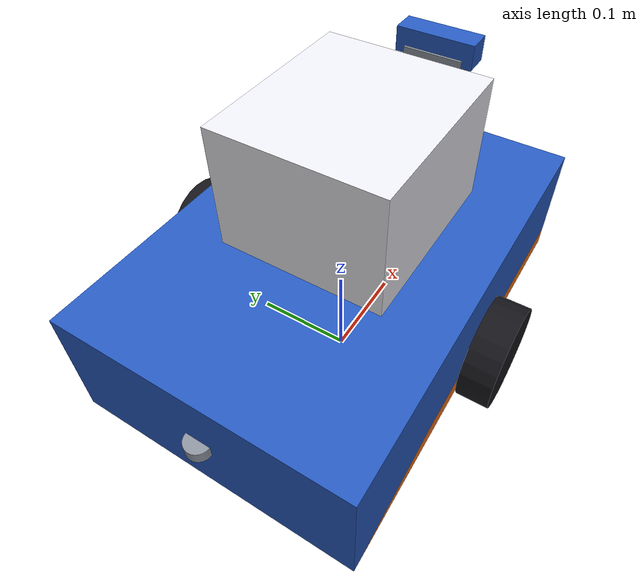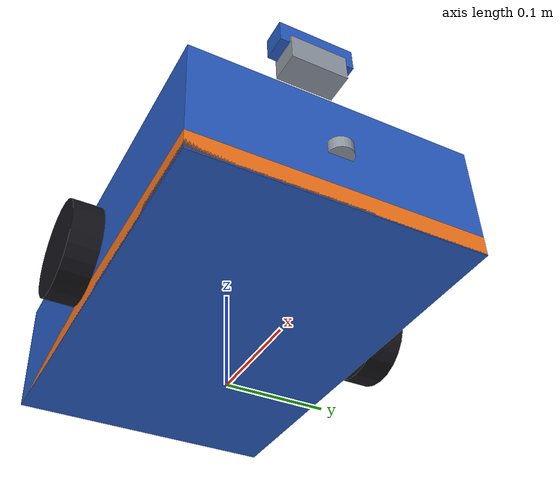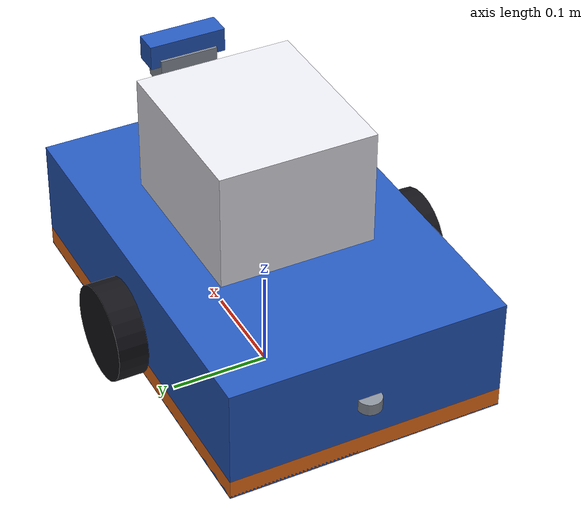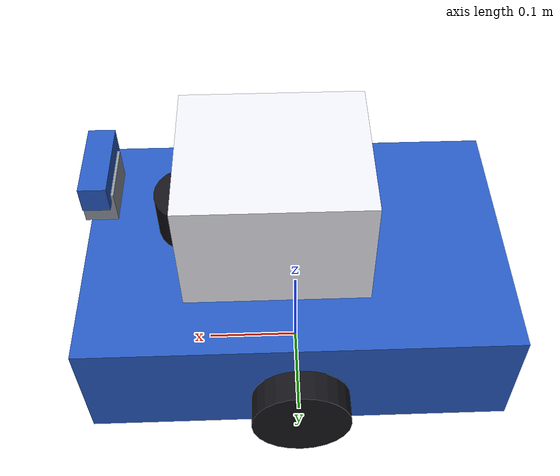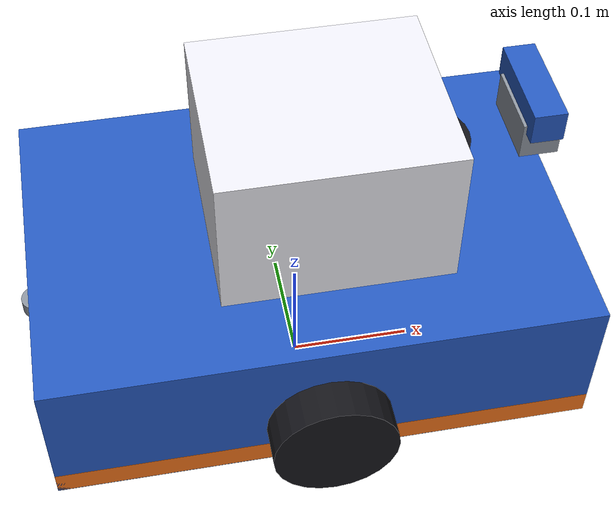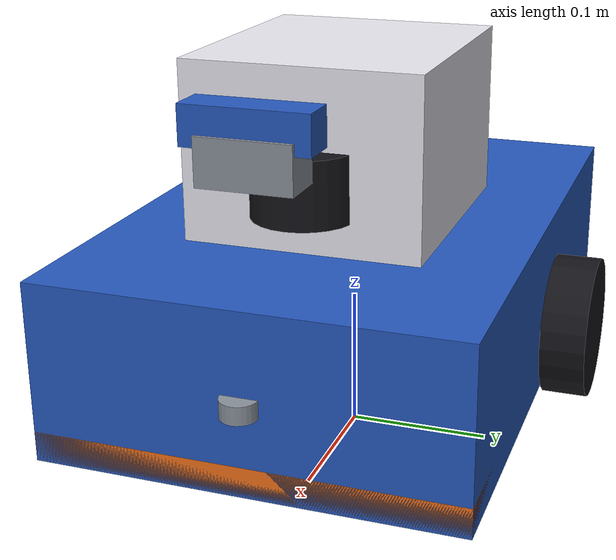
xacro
<?xml version="1.0"?>
<robot xmlns:xacro="http://www.ros.org/wiki/xacro" name="medibot">

  <!-- controller yaml path injected by launch -->
  <xacro:arg name="controller_yaml" default="/opt/ros/humble/share/diff_drive_controller/config/diff_drive_controller.yaml"/>

  <!-- ===================== Properties ===================== -->
  <xacro:property name="M_PI" value="3.141592653589793"/>
  <xacro:property name="wheel_radius" value="0.048"/>
  <xacro:property name="wheel_width" value="0.030"/>
  <xacro:property name="wheel_separation" value="0.32"/>
  <xacro:property name="chassis_length" value="0.42"/>
  <xacro:property name="chassis_width" value="0.28"/>
  <xacro:property name="chassis_height" value="0.12"/>
  <xacro:property name="chassis_mass" value="4.5"/>
  <xacro:property name="wheel_mass" value="0.35"/>
  <xacro:property name="lidar_mass" value="0.25"/>
  <xacro:property name="payload_mass" value="0.5"/>
  <xacro:property name="ground_clearance" value="0.05"/>

  <!-- ===================== Materials ===================== -->
  <material name="medinav_grey">
    <color rgba="0.55 0.58 0.62 1.0"/>
  </material>
  <material name="medinav_blue">
    <color rgba="0.15 0.35 0.75 1.0"/>
  </material>
  <material name="medinav_white">
    <color rgba="0.92 0.92 0.95 1.0"/>
  </material>
  <material name="medinav_orange">
    <color rgba="0.95 0.45 0.10 1.0"/>
  </material>
  <material name="medinav_black">
    <color rgba="0.08 0.08 0.10 1.0"/>
  </material>

  <!-- ===================== Macros ===================== -->
  <xacro:macro name="box_inertia" params="mass x y z">
    <inertial>
      <mass value="${mass}"/>
      <inertia ixx="${mass/12.0*(y*y+z*z)}" ixy="0.0" ixz="0.0"
               iyy="${mass/12.0*(x*x+z*z)}" iyz="0.0"
               izz="${mass/12.0*(x*x+y*y)}"/>
    </inertial>
  </xacro:macro>

  <xacro:macro name="cylinder_inertia" params="mass r h">
    <inertial>
      <mass value="${mass}"/>
      <inertia ixx="${mass/12.0*(3*r*r+h*h)}" ixy="0.0" ixz="0.0"
               iyy="${mass/12.0*(3*r*r+h*h)}" iyz="0.0"
               izz="${mass/2.0*r*r}"/>
    </inertial>
  </xacro:macro>

  <xacro:macro name="wheel" params="prefix reflect">
    <link name="${prefix}_wheel_link">
      <visual>
        <origin xyz="0 0 0" rpy="${M_PI/2} 0 0"/>
        <geometry>
          <cylinder radius="${wheel_radius}" length="${wheel_width}"/>
        </geometry>
        <material name="medinav_black"/>
      </visual>
      <collision>
        <origin xyz="0 0 0" rpy="${M_PI/2} 0 0"/>
        <geometry>
          <cylinder radius="${wheel_radius}" length="${wheel_width}"/>
        </geometry>
      </collision>
      <xacro:cylinder_inertia mass="${wheel_mass}" r="${wheel_radius}" h="${wheel_width}"/>
    </link>
    <joint name="${prefix}_wheel_joint" type="continuous">
      <parent link="base_link"/>
      <child link="${prefix}_wheel_link"/>
      <origin xyz="0 ${reflect * wheel_separation/2} ${wheel_radius}" rpy="0 0 0"/>
      <axis xyz="0 1 0"/>
    </joint>
    <gazebo reference="${prefix}_wheel_link">
      <mu1>1.2</mu1>
      <mu2>1.2</mu2>
      <kp>1000000.0</kp>
      <kd>100.0</kd>
      <minDepth>0.001</minDepth>
      <maxVel>1.0</maxVel>
      <material>Gazebo/Black</material>
    </gazebo>
    <ros2_control name="${prefix}_wheel_joint" type="system">
      <!-- placeholder removed; full ros2_control block is at robot level -->
    </ros2_control>
  </xacro:macro>

  <!-- ===================== Chassis ===================== -->
  <link name="base_footprint"/>

  <joint name="base_footprint_joint" type="fixed">
    <parent link="base_footprint"/>
    <child link="base_link"/>
    <origin xyz="0 0 ${ground_clearance + chassis_height/2}" rpy="0 0 0"/>
  </joint>

  <link name="base_link">
    <visual>
      <origin xyz="0 0 0" rpy="0 0 0"/>
      <geometry>
        <box size="${chassis_length} ${chassis_width} ${chassis_height}"/>
      </geometry>
      <material name="medinav_blue"/>
    </visual>
    <collision>
      <origin xyz="0 0 0" rpy="0 0 0"/>
      <geometry>
        <box size="${chassis_length} ${chassis_width} ${chassis_height}"/>
      </geometry>
    </collision>
    <xacro:box_inertia mass="${chassis_mass}" x="${chassis_length}" y="${chassis_width}" z="${chassis_height}"/>
  </link>

  <gazebo reference="base_link">
    <material>Gazebo/Blue</material>
    <selfCollide>false</selfCollide>
  </gazebo>

  <!-- ===================== Wheels ===================== -->
  <!-- Inline wheels (macros above keep file readable; joints here for clarity) -->
  <link name="left_wheel_link">
    <visual>
      <origin xyz="0 0 0" rpy="${M_PI/2} 0 0"/>
      <geometry>
        <cylinder radius="${wheel_radius}" length="${wheel_width}"/>
      </geometry>
      <material name="medinav_black"/>
    </visual>
    <collision>
      <origin xyz="0 0 0" rpy="${M_PI/2} 0 0"/>
      <geometry>
        <cylinder radius="${wheel_radius}" length="${wheel_width}"/>
      </geometry>
    </collision>
    <xacro:cylinder_inertia mass="${wheel_mass}" r="${wheel_radius}" h="${wheel_width}"/>
  </link>
  <joint name="left_wheel_joint" type="continuous">
    <parent link="base_link"/>
    <child link="left_wheel_link"/>
    <origin xyz="0 ${wheel_separation/2} ${wheel_radius - chassis_height/2}" rpy="0 0 0"/>
    <axis xyz="0 1 0"/>
  </joint>
  <gazebo reference="left_wheel_link">
    <mu1>1.2</mu1><mu2>1.2</mu2>
    <kp>1000000.0</kp><kd>100.0</kd>
    <material>Gazebo/Black</material>
  </gazebo>

  <link name="right_wheel_link">
    <visual>
      <origin xyz="0 0 0" rpy="${M_PI/2} 0 0"/>
      <geometry>
        <cylinder radius="${wheel_radius}" length="${wheel_width}"/>
      </geometry>
      <material name="medinav_black"/>
    </visual>
    <collision>
      <origin xyz="0 0 0" rpy="${M_PI/2} 0 0"/>
      <geometry>
        <cylinder radius="${wheel_radius}" length="${wheel_width}"/>
      </geometry>
    </collision>
    <xacro:cylinder_inertia mass="${wheel_mass}" r="${wheel_radius}" h="${wheel_width}"/>
  </link>
  <joint name="right_wheel_joint" type="continuous">
    <parent link="base_link"/>
    <child link="right_wheel_link"/>
    <origin xyz="0 ${-wheel_separation/2} ${wheel_radius - chassis_height/2}" rpy="0 0 0"/>
    <axis xyz="0 1 0"/>
  </joint>
  <gazebo reference="right_wheel_link">
    <mu1>1.2</mu1><mu2>1.2</mu2>
    <kp>1000000.0</kp><kd>100.0</kd>
    <material>Gazebo/Black</material>
  </gazebo>

  <!-- Caster -->
  <link name="caster_link">
    <visual>
      <origin xyz="0 0 0" rpy="0 0 0"/>
      <geometry>
        <sphere radius="0.03"/>
      </geometry>
      <material name="medinav_grey"/>
    </visual>
    <collision>
      <origin xyz="0 0 0" rpy="0 0 0"/>
      <geometry>
        <sphere radius="0.03"/>
      </geometry>
    </collision>
    <xacro:cylinder_inertia mass="0.12" r="0.03" h="0.03"/>
  </link>
  <joint name="caster_joint" type="fixed">
    <parent link="base_link"/>
    <child link="caster_link"/>
    <origin xyz="${-chassis_length/2 + 0.04} 0 ${0.03 - chassis_height/2}" rpy="0 0 0"/>
  </joint>
  <gazebo reference="caster_link">
    <mu1>0.05</mu1><mu2>0.05</mu2>
    <material>Gazebo/Grey</material>
  </gazebo>

  <!-- ===================== Payload box ===================== -->
  <link name="payload_link">
    <visual>
      <origin xyz="0 0 0" rpy="0 0 0"/>
      <geometry>
        <box size="0.18 0.16 0.12"/>
      </geometry>
      <material name="medinav_white"/>
    </visual>
    <collision>
      <origin xyz="0 0 0" rpy="0 0 0"/>
      <geometry>
        <box size="0.18 0.16 0.12"/>
      </geometry>
    </collision>
    <xacro:box_inertia mass="${payload_mass}" x="0.18" y="0.16" z="0.12"/>
  </link>
  <joint name="payload_joint" type="fixed">
    <parent link="base_link"/>
    <child link="payload_link"/>
    <origin xyz="0.02 0 ${chassis_height/2 + 0.06}" rpy="0 0 0"/>
  </joint>

  <!-- ===================== 2D LiDAR ===================== -->
  <link name="lidar_link">
    <visual>
      <origin xyz="0 0 0" rpy="0 0 0"/>
      <geometry>
        <cylinder radius="0.035" length="0.045"/>
      </geometry>
      <material name="medinav_black"/>
    </visual>
    <collision>
      <origin xyz="0 0 0" rpy="0 0 0"/>
      <geometry>
        <cylinder radius="0.035" length="0.045"/>
      </geometry>
    </collision>
    <xacro:cylinder_inertia mass="${lidar_mass}" r="0.035" h="0.045"/>
  </link>
  <joint name="lidar_joint" type="fixed">
    <parent link="base_link"/>
    <child link="lidar_link"/>
    <origin xyz="0.10 0 ${chassis_height/2 + 0.045}" rpy="0 0 0"/>
  </joint>

  <!-- Gazebo GPU/CPU lidar sensor -->
  <gazebo reference="lidar_link">
    <material>Gazebo/Black</material>
    <sensor name="lidar" type="ray">
      <always_on>true</always_on>
      <update_rate>15</update_rate>
      <visualize>true</visualize>
      <pose>0 0 0 0 0 0</pose>
      <ray>
        <scan>
          <horizontal>
            <samples>360</samples>
            <resolution>1</resolution>
            <min_angle>-3.14159</min_angle>
            <max_angle>3.14159</max_angle>
          </horizontal>
        </scan>
        <range>
          <min>0.12</min>
          <max>12.0</max>
          <resolution>0.01</resolution>
        </range>
        <noise>
          <type>gaussian</type>
          <mean>0.0</mean>
          <stddev>0.012</stddev>
        </noise>
      </ray>
      <plugin name="lidar_plugin" filename="libgazebo_ros_ray_sensor.so">
        <ros>
          <remapping>~/out:=scan</remapping>
        </ros>
        <output_type>sensor_msgs/LaserScan</output_type>
        <frame_name>lidar_link</frame_name>
      </plugin>
    </sensor>
  </gazebo>

  <!-- ===================== IMU ===================== -->
  <link name="imu_link">
    <visual>
      <origin xyz="0 0 0" rpy="0 0 0"/>
      <geometry>
        <box size="0.02 0.02 0.01"/>
      </geometry>
      <material name="medinav_orange"/>
    </visual>
    <xacro:box_inertia mass="0.02" x="0.02" y="0.02" z="0.01"/>
  </link>
  <joint name="imu_joint" type="fixed">
    <parent link="base_link"/>
    <child link="imu_link"/>
    <origin xyz="0 0 ${chassis_height/2 + 0.01}" rpy="0 0 0"/>
  </joint>
  <gazebo reference="imu_link">
    <gravity>true</gravity>
    <sensor name="imu_sensor" type="imu">
      <always_on>true</always_on>
      <update_rate>100</update_rate>
      <imu>
        <angular_velocity>
          <x><noise type="gaussian"><mean>0</mean><stddev>0.0002</stddev></noise></x>
          <y><noise type="gaussian"><mean>0</mean><stddev>0.0002</stddev></noise></y>
          <z><noise type="gaussian"><mean>0</mean><stddev>0.0002</stddev></noise></z>
        </angular_velocity>
        <linear_acceleration>
          <x><noise type="gaussian"><mean>0</mean><stddev>0.017</stddev></noise></x>
          <y><noise type="gaussian"><mean>0</mean><stddev>0.017</stddev></noise></y>
          <z><noise type="gaussian"><mean>0</mean><stddev>0.017</stddev></noise></z>
        </linear_acceleration>
      </imu>
      <plugin name="imu_plugin" filename="libgazebo_ros_imu_sensor.so">
        <ros>
          <remapping>~/out:=imu</remapping>
        </ros>
        <frame_name>imu_link</frame_name>
        <initial_orientation_as_reference>false</initial_orientation_as_reference>
      </plugin>
    </sensor>
  </gazebo>

  <!-- ===================== RGB Camera ===================== -->
  <link name="camera_link">
    <visual>
      <origin xyz="0 0 0" rpy="0 0 0"/>
      <geometry>
        <box size="0.03 0.06 0.03"/>
      </geometry>
      <material name="medinav_grey"/>
    </visual>
    <collision>
      <geometry>
        <box size="0.03 0.06 0.03"/>
      </geometry>
    </collision>
    <xacro:box_inertia mass="0.05" x="0.03" y="0.06" z="0.03"/>
  </link>
  <joint name="camera_joint" type="fixed">
    <parent link="base_link"/>
    <child link="camera_link"/>
    <origin xyz="0.18 0 ${chassis_height/2 + 0.08}" rpy="0 0 0"/>
  </joint>
  <gazebo reference="camera_link">
    <sensor name="camera" type="camera">
      <always_on>true</always_on>
      <update_rate>15</update_rate>
      <camera>
        <horizontal_fov>1.3962634</horizontal_fov>
        <image>
          <width>640</width>
          <height>480</height>
          <format>R8G8B8</format>
        </image>
        <clip>
          <near>0.05</near>
          <far>10.0</far>
        </clip>
        <noise>
          <type>gaussian</type>
          <mean>0.0</mean>
          <stddev>0.007</stddev>
        </noise>
      </camera>
      <plugin name="camera_controller" filename="libgazebo_ros_camera.so">
        <ros>
          <remapping>~/image_raw:=camera/image_raw</remapping>
          <remapping>~/camera_info:=camera/camera_info</remapping>
        </ros>
        <frame_name>camera_link</frame_name>
        <hack_baseline>0.07</hack_baseline>
      </plugin>
    </sensor>
  </gazebo>

  <!-- ===================== Bumpers / safety ===================== -->
  <link name="bumper_link">
    <visual>
      <geometry>
        <box size="${chassis_length} ${chassis_width} 0.02"/>
      </geometry>
      <material name="medinav_orange"/>
    </visual>
    <xacro:box_inertia mass="0.05" x="${chassis_length}" y="${chassis_width}" z="0.02"/>
  </link>
  <joint name="bumper_joint" type="fixed">
    <parent link="base_link"/>
    <child link="bumper_link"/>
    <origin xyz="0 0 ${-chassis_height/2 + 0.01}" rpy="0 0 0"/>
  </joint>

  <!-- ===================== Ultrasonic ring ===================== -->
  <xacro:macro name="ultrasonic" params="name x y yaw">
    <link name="ultrasonic_${name}_link">
      <visual>
        <geometry>
          <cylinder radius="0.012" length="0.012"/>
        </geometry>
        <material name="medinav_grey"/>
      </visual>
      <xacro:cylinder_inertia mass="0.01" r="0.012" h="0.012"/>
    </link>
    <joint name="ultrasonic_${name}_joint" type="fixed">
      <parent link="base_link"/>
      <child link="ultrasonic_${name}_link"/>
      <origin xyz="${x} ${y} 0" rpy="0 0 ${yaw}"/>
    </joint>
    <gazebo reference="ultrasonic_${name}_link">
      <sensor name="us_${name}" type="ray">
        <always_on>true</always_on>
        <update_rate>20</update_rate>
        <visualize>false</visualize>
        <ray>
          <scan>
            <horizontal>
              <samples>5</samples>
              <resolution>1</resolution>
              <min_angle>-0.26</min_angle>
              <max_angle>0.26</max_angle>
            </horizontal>
          </scan>
          <range>
            <min>0.02</min>
            <max>4.0</max>
            <resolution>0.01</resolution>
          </range>
          <noise>
            <type>gaussian</type>
            <mean>0.0</mean>
            <stddev>0.01</stddev>
          </noise>
        </ray>
        <plugin name="us_${name}_plugin" filename="libgazebo_ros_ray_sensor.so">
          <ros>
            <remapping>~/out:=ultrasonic/${name}</remapping>
          </ros>
          <output_type>sensor_msgs/Range</output_type>
          <frame_name>ultrasonic_${name}_link</frame_name>
          <radiation_type>ultrasound</radiation_type>
          <fov>0.52</fov>
        </plugin>
      </sensor>
    </gazebo>
  </xacro:macro>

  <xacro:ultrasonic name="front" x="${chassis_length/2}" y="0" yaw="0"/>
  <xacro:ultrasonic name="rear" x="${-chassis_length/2}" y="0" yaw="${M_PI}"/>
  <xacro:ultrasonic name="fl" x="${chassis_length/2 - 0.04}" y="${chassis_width/2 - 0.03}" yaw="0.6"/>
  <xacro:ultrasonic name="fr" x="${chassis_length/2 - 0.04}" y="${-chassis_width/2 + 0.03}" yaw="-0.6"/>
  <xacro:ultrasonic name="rl" x="${-chassis_length/2 + 0.04}" y="${chassis_width/2 - 0.03}" yaw="2.5"/>
  <xacro:ultrasonic name="rr" x="${-chassis_length/2 + 0.04}" y="${-chassis_width/2 + 0.03}" yaw="-2.5"/>

  <!-- ===================== Depth camera frame ===================== -->
  <link name="camera_depth_frame">
    <visual>
      <geometry>
        <box size="0.025 0.08 0.025"/>
      </geometry>
      <material name="medinav_blue"/>
    </visual>
    <xacro:box_inertia mass="0.04" x="0.025" y="0.08" z="0.025"/>
  </link>
  <joint name="camera_depth_joint" type="fixed">
    <parent link="camera_link"/>
    <child link="camera_depth_frame"/>
    <origin xyz="0 0 0.02" rpy="0 0 0"/>
  </joint>
  <gazebo reference="camera_depth_frame">
    <sensor name="depth_camera" type="depth">
      <always_on>true</always_on>
      <update_rate>15</update_rate>
      <camera>
        <horizontal_fov>1.047</horizontal_fov>
        <image>
          <width>640</width>
          <height>480</height>
          <format>R8G8B8</format>
        </image>
        <clip>
          <near>0.1</near>
          <far>8.0</far>
        </clip>
      </camera>
      <plugin name="depth_camera_controller" filename="libgazebo_ros_camera.so">
        <ros>
          <remapping>~/image_raw:=camera/depth/image_raw</remapping>
          <remapping>~/depth/image_raw:=camera/depth/image_raw</remapping>
          <remapping>~/camera_info:=camera/depth/camera_info</remapping>
          <remapping>~/points:=camera/depth/points</remapping>
        </ros>
        <frame_name>camera_depth_frame</frame_name>
        <min_depth>0.1</min_depth>
        <max_depth>8.0</max_depth>
      </plugin>
    </sensor>
  </gazebo>

  <!-- ===================== GPS / magnetometer (outdoor ext) ===================== -->
  <link name="gps_link">
    <visual>
      <geometry>
        <box size="0.03 0.03 0.012"/>
      </geometry>
      <material name="medinav_white"/>
    </visual>
    <xacro:box_inertia mass="0.015" x="0.03" y="0.03" z="0.012"/>
  </link>
  <joint name="gps_joint" type="fixed">
    <parent link="base_link"/>
    <child link="gps_link"/>
    <origin xyz="-0.05 0 ${chassis_height/2 + 0.02}" rpy="0 0 0"/>
  </joint>
  <gazebo reference="gps_link">
    <sensor name="gps_sensor" type="gps">
      <always_on>true</always_on>
      <update_rate>5</update_rate>
      <gps>
        <position_sensing>
          <horizontal>
            <noise type="gaussian">
              <mean>0.0</mean>
              <stddev>0.5</stddev>
            </noise>
          </horizontal>
          <vertical>
            <noise type="gaussian">
              <mean>0.0</mean>
              <stddev>1.0</stddev>
            </noise>
          </vertical>
        </position_sensing>
      </gps>
      <plugin name="gps_plugin" filename="libgazebo_ros_gps_sensor.so">
        <ros>
          <remapping>~/out:=gps/fix</remapping>
        </ros>
        <frame_name>gps_link</frame_name>
      </plugin>
    </sensor>
  </gazebo>

  <!-- ===================== ros2_control ===================== -->
  <ros2_control name="GazeboSystem" type="system">
    <hardware>
      <plugin>gazebo_ros2_control/GazeboSystem</plugin>
    </hardware>
    <joint name="left_wheel_joint">
      <command_interface name="velocity">
        <param name="min">-10</param>
        <param name="max">10</param>
      </command_interface>
      <state_interface name="position"/>
      <state_interface name="velocity"/>
      <state_interface name="effort"/>
    </joint>
    <joint name="right_wheel_joint">
      <command_interface name="velocity">
        <param name="min">-10</param>
        <param name="max">10</param>
      </command_interface>
      <state_interface name="position"/>
      <state_interface name="velocity"/>
      <state_interface name="effort"/>
    </joint>
  </ros2_control>

  <gazebo>
    <plugin filename="libgazebo_ros2_control.so" name="gazebo_ros2_control">
      <parameters>$(arg controller_yaml)</parameters>
    </plugin>
  </gazebo>

</robot>
